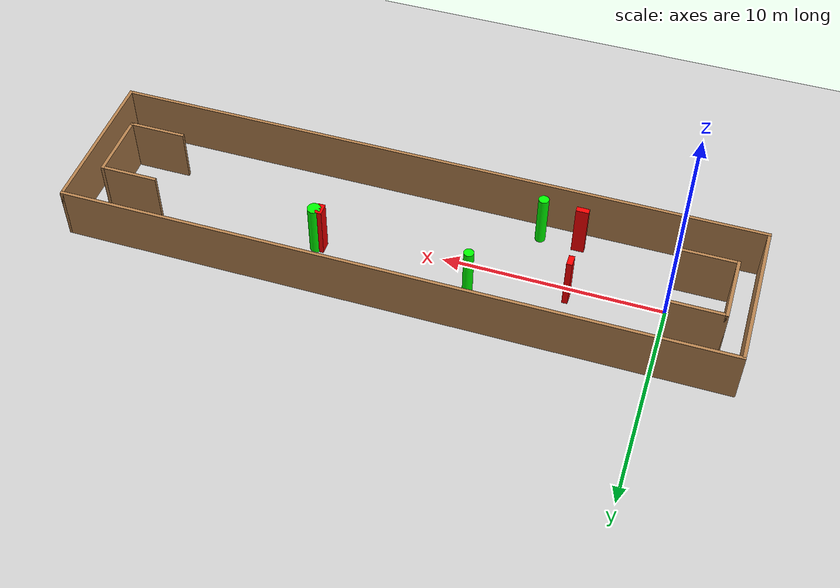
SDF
<sdf version="1.7">
 <world name="default">
  <light name="sun" type="directional">
   <pose>0 0 10 0 -0 0</pose>
   <diffuse>0.8 0.8 0.8 1</diffuse>
   <specular>0.2 0.2 0.2 1</specular>
   <attenuation>
    <range>1000</range>
    <constant>0.9</constant>
    <linear>0.01</linear>
    <quadratic>0.001</quadratic>
   </attenuation>
   <direction>-0.5 0.1 -0.9</direction>
   <spot><inner_angle>0</inner_angle><outer_angle>0</outer_angle><falloff>0</falloff></spot>
  </light>
  <model name="ground_plane">
   <static>1</static>
   <link name="link">
    <collision name="collision">
     <geometry><plane><normal>0 0 1</normal><size>100 100</size></plane></geometry>
     <surface>
      <contact><collide_bitmask>65535</collide_bitmask></contact>
      <friction><ode><mu>100</mu><mu2>50</mu2></ode></friction>
     </surface>
    </collision>
    <visual name="visual">
     <cast_shadows>0</cast_shadows>
     <geometry><plane><normal>0 0 1</normal><size>100 100</size></plane></geometry>
     <material>
      <script><uri>file://media/materials/scripts/gazebo.material</uri><name>Gazebo/Grey</name></script>
     </material>
    </visual>
   </link>
  </model>
  <gravity>0 0 -9.8</gravity>
  <magnetic_field>6e-06 2.3e-05 -4.2e-05</magnetic_field>
  <atmosphere type="adiabatic"/>
  <physics type="ode">
   <max_step_size>0.001</max_step_size>
   <real_time_factor>1</real_time_factor>
   <real_time_update_rate>1000</real_time_update_rate>
  </physics>
  <scene><ambient>0.4 0.4 0.4 1</ambient><background>0.7 0.7 0.7 1</background><shadows>1</shadows></scene>
  <spherical_coordinates>
   <surface_model>EARTH_WGS84</surface_model>
   <latitude_deg>0</latitude_deg>
   <longitude_deg>0</longitude_deg>
   <elevation>0</elevation>
   <heading_deg>0</heading_deg>
  </spherical_coordinates>
  <model name="my_base_walls">
   <link name="Wall_0">
    <collision name="Wall_0_Collision">
     <geometry><box><size>7.15 0.15 2.5</size></box></geometry>
     <pose>0 0 1.25 0 -0 0</pose>
    </collision>
    <visual name="Wall_0_Visual">
     <pose>0 0 1.25 0 -0 0</pose>
     <geometry><box><size>7.15 0.15 2.5</size></box></geometry>
     <material>
      <script><uri>file://media/materials/scripts/gazebo.material</uri><name>Gazebo/Wood</name></script>
      <ambient>1 1 1 1</ambient>
     </material>
     <meta><layer>0</layer></meta>
    </visual>
    <pose>-15 0 0 0 -0 1.5708</pose>
   </link>
   <link name="Wall_10">
    <collision name="Wall_10_Collision">
     <geometry><box><size>2.65 0.15 2.5</size></box></geometry>
     <pose>0 0 1.25 0 -0 0</pose>
    </collision>
    <visual name="Wall_10_Visual">
     <pose>0 0 1.25 0 -0 0</pose>
     <geometry><box><size>2.65 0.15 2.5</size></box></geometry>
     <material>
      <script><uri>file://media/materials/scripts/gazebo.material</uri><name>Gazebo/Wood</name></script>
      <ambient>1 1 1 1</ambient>
     </material>
     <meta><layer>0</layer></meta>
    </visual>
    <pose>-12.75 -1.5 0 0 -0 0</pose>
   </link>
   <link name="Wall_12">
    <collision name="Wall_12_Collision">
     <geometry><box><size>2.65 0.15 2.5</size></box></geometry>
     <pose>0 0 1.25 0 -0 0</pose>
    </collision>
    <visual name="Wall_12_Visual">
     <pose>0 0 1.25 0 -0 0</pose>
     <geometry><box><size>2.65 0.15 2.5</size></box></geometry>
     <material>
      <script><uri>file://media/materials/scripts/gazebo.material</uri><name>Gazebo/Wood</name></script>
      <ambient>1 1 1 1</ambient>
     </material>
     <meta><layer>0</layer></meta>
    </visual>
    <pose>-12.75 1.5 0 0 -0 0</pose>
   </link>
   <link name="Wall_14">
    <collision name="Wall_14_Collision">
     <geometry><box><size>3.15 0.15 2.5</size></box></geometry>
     <pose>0 0 1.25 0 -0 0</pose>
    </collision>
    <visual name="Wall_14_Visual">
     <pose>0 0 1.25 0 -0 0</pose>
     <geometry><box><size>3.15 0.15 2.5</size></box></geometry>
     <material>
      <script><uri>file://media/materials/scripts/gazebo.material</uri><name>Gazebo/Wood</name></script>
      <ambient>1 1 1 1</ambient>
     </material>
     <meta><layer>0</layer></meta>
    </visual>
    <pose>14 0 0 0 -0 -1.5708</pose>
   </link>
   <link name="Wall_15">
    <collision name="Wall_15_Collision">
     <geometry><box><size>2.65 0.15 2.5</size></box></geometry>
     <pose>0 0 1.25 0 -0 0</pose>
    </collision>
    <visual name="Wall_15_Visual">
     <pose>0 0 1.25 0 -0 0</pose>
     <geometry><box><size>2.65 0.15 2.5</size></box></geometry>
     <material>
      <script><uri>file://media/materials/scripts/gazebo.material</uri><name>Gazebo/Wood</name></script>
      <ambient>1 1 1 1</ambient>
     </material>
     <meta><layer>0</layer></meta>
    </visual>
    <pose>12.75 -1.5 0 0 -0 3.14159</pose>
   </link>
   <link name="Wall_17">
    <collision name="Wall_17_Collision">
     <geometry><box><size>2.65 0.15 2.5</size></box></geometry>
     <pose>0 0 1.25 0 -0 0</pose>
    </collision>
    <visual name="Wall_17_Visual">
     <pose>0 0 1.25 0 -0 0</pose>
     <geometry><box><size>2.65 0.15 2.5</size></box></geometry>
     <material>
      <script><uri>file://media/materials/scripts/gazebo.material</uri><name>Gazebo/Wood</name></script>
      <ambient>1 1 1 1</ambient>
     </material>
     <meta><layer>0</layer></meta>
    </visual>
    <pose>12.75 1.5 0 0 -0 3.14159</pose>
   </link>
   <link name="Wall_2">
    <collision name="Wall_2_Collision">
     <geometry><box><size>30.15 0.15 2.5</size></box></geometry>
     <pose>0 0 1.25 0 -0 0</pose>
    </collision>
    <visual name="Wall_2_Visual">
     <pose>0 0 1.25 0 -0 0</pose>
     <geometry><box><size>30.15 0.15 2.5</size></box></geometry>
     <material>
      <script><uri>file://media/materials/scripts/gazebo.material</uri><name>Gazebo/Wood</name></script>
      <ambient>1 1 1 1</ambient>
     </material>
     <meta><layer>0</layer></meta>
    </visual>
    <pose>-0 -3.5 0 0 -0 0</pose>
   </link>
   <link name="Wall_4">
    <collision name="Wall_4_Collision">
     <geometry><box><size>30.15 0.15 2.5</size></box></geometry>
     <pose>0 0 1.25 0 -0 0</pose>
    </collision>
    <visual name="Wall_4_Visual">
     <pose>0 0 1.25 0 -0 0</pose>
     <geometry><box><size>30.15 0.15 2.5</size></box></geometry>
     <material>
      <script><uri>file://media/materials/scripts/gazebo.material</uri><name>Gazebo/Wood</name></script>
      <ambient>1 1 1 1</ambient>
     </material>
     <meta><layer>0</layer></meta>
    </visual>
    <pose>-0 3.5 0 0 -0 0</pose>
   </link>
   <link name="Wall_6">
    <collision name="Wall_6_Collision">
     <geometry><box><size>7.15 0.15 2.5</size></box></geometry>
     <pose>0 0 1.25 0 -0 0</pose>
    </collision>
    <visual name="Wall_6_Visual">
     <pose>0 0 1.25 0 -0 0</pose>
     <geometry><box><size>7.15 0.15 2.5</size></box></geometry>
     <material>
      <script><uri>file://media/materials/scripts/gazebo.material</uri><name>Gazebo/Wood</name></script>
      <ambient>1 1 1 1</ambient>
     </material>
     <meta><layer>0</layer></meta>
    </visual>
    <pose>15 0 0 0 -0 -1.5708</pose>
   </link>
   <link name="Wall_9">
    <collision name="Wall_9_Collision">
     <geometry><box><size>3.15 0.15 2.5</size></box></geometry>
     <pose>0 0 1.25 0 -0 0</pose>
    </collision>
    <visual name="Wall_9_Visual">
     <pose>0 0 1.25 0 -0 0</pose>
     <geometry><box><size>3.15 0.15 2.5</size></box></geometry>
     <material>
      <script><uri>file://media/materials/scripts/gazebo.material</uri><name>Gazebo/Wood</name></script>
      <ambient>1 1 1 1</ambient>
     </material>
     <meta><layer>0</layer></meta>
    </visual>
    <pose>-14 0 0 0 -0 -1.5708</pose>
   </link>
   <static>1</static>
   <pose>11.5 0 0 0 -0 0</pose>
  </model>
  <model name="cylinder1">
   <static>1</static>
   <link name="link">
    <inertial>
     <mass>1</mass>
     <inertia><ixx>0.5</ixx><ixy>0</ixy><ixz>0</ixz><iyy>0.5</iyy><iyz>0</iyz><izz>1</izz></inertia>
    </inertial>
    <collision name="collision">
     <geometry><cylinder><radius>0.22720727942196672</radius><length>2.5</length></cylinder></geometry>
    </collision>
    <visual name="visual">
     <geometry><cylinder><radius>0.22720727942196672</radius><length>2.5</length></cylinder></geometry>
     <material>
      <ambient>0 1 0 1</ambient>
      <diffuse>0 1 0 1</diffuse>
      <specular>0.1 0.1 0.1 1</specular>
      <emissive>0 0 0 0</emissive>
     </material>
    </visual>
   </link>
   <pose>8.460772936741309 1.4446498533823533 1.25 0 0 0</pose>
  </model>
  <model name="cylinder2">
   <static>1</static>
   <link name="link">
    <inertial>
     <mass>1</mass>
     <inertia><ixx>0.5</ixx><ixy>0</ixy><ixz>0</ixz><iyy>0.5</iyy><iyz>0</iyz><izz>1</izz></inertia>
    </inertial>
    <collision name="collision">
     <geometry><cylinder><radius>0.3090887401085824</radius><length>2.5</length></cylinder></geometry>
    </collision>
    <visual name="visual">
     <geometry><cylinder><radius>0.3090887401085824</radius><length>2.5</length></cylinder></geometry>
     <material>
      <ambient>0 1 0 1</ambient>
      <diffuse>0 1 0 1</diffuse>
      <specular>0.1 0.1 0.1 1</specular>
      <emissive>0 0 0 0</emissive>
     </material>
    </visual>
   </link>
   <pose>15.607083938366152 1.0104167682816865 1.25 0 0 0</pose>
  </model>
  <model name="cylinder3">
   <static>1</static>
   <link name="link">
    <inertial>
     <mass>1</mass>
     <inertia><ixx>0.5</ixx><ixy>0</ixy><ixz>0</ixz><iyy>0.5</iyy><iyz>0</iyz><izz>1</izz></inertia>
    </inertial>
    <collision name="collision">
     <geometry><cylinder><radius>0.2369131995288724</radius><length>2.5</length></cylinder></geometry>
    </collision>
    <visual name="visual">
     <geometry><cylinder><radius>0.2369131995288724</radius><length>2.5</length></cylinder></geometry>
     <material>
      <ambient>0 1 0 1</ambient>
      <diffuse>0 1 0 1</diffuse>
      <specular>0.1 0.1 0.1 1</specular>
      <emissive>0 0 0 0</emissive>
     </material>
    </visual>
   </link>
   <pose>6.212013211465374 -2.584056944542808 1.25 0 0 0</pose>
  </model>
  <model name="box1">
   <static>1</static>
   <link name="link">
    <inertial>
     <mass>1</mass>
     <inertia><ixx>0.083</ixx><ixy>0</ixy><ixz>0</ixz><iyy>0.083</iyy><iyz>0</iyz><izz>0.083</izz></inertia>
    </inertial>
    <collision name="collision">
     <geometry><box><size>0.5751149738652186 0.258105046487295 2.5</size></box></geometry>
    </collision>
    <visual name="visual">
     <geometry><box><size>0.5751149738652186 0.258105046487295 2.5</size></box></geometry>
     <material>
      <ambient>1 0 0 1</ambient>
      <diffuse>1 0 0 1</diffuse>
      <specular>0.1 0.1 0.1 1</specular>
      <emissive>0 0 0 0</emissive>
     </material>
    </visual>
    <sensor name="my_contact" type="contact">
     <contact><collision>box_collision</collision><topic>__default_topic__</topic></contact>
    </sensor>
   </link>
   <pose>4.441013160063985 -2.4732096905143566 1.25 0 0 0</pose>
  </model>
  <model name="box2">
   <static>1</static>
   <link name="link">
    <inertial>
     <mass>1</mass>
     <inertia><ixx>0.083</ixx><ixy>0</ixy><ixz>0</ixz><iyy>0.083</iyy><iyz>0</iyz><izz>0.083</izz></inertia>
    </inertial>
    <collision name="collision">
     <geometry><box><size>0.34548578159743004 0.5633631305615051 2.5</size></box></geometry>
    </collision>
    <visual name="visual">
     <geometry><box><size>0.34548578159743004 0.5633631305615051 2.5</size></box></geometry>
     <material>
      <ambient>1 0 0 1</ambient>
      <diffuse>1 0 0 1</diffuse>
      <specular>0.1 0.1 0.1 1</specular>
      <emissive>0 0 0 0</emissive>
     </material>
    </visual>
    <sensor name="my_contact" type="contact">
     <contact><collision>box_collision</collision><topic>__default_topic__</topic></contact>
    </sensor>
   </link>
   <pose>15.37535022095253 0.9618882166528353 1.25 0 0 0</pose>
  </model>
  <model name="box3">
   <static>1</static>
   <link name="link">
    <inertial>
     <mass>1</mass>
     <inertia><ixx>0.083</ixx><ixy>0</ixy><ixz>0</ixz><iyy>0.083</iyy><iyz>0</iyz><izz>0.083</izz></inertia>
    </inertial>
    <collision name="collision">
     <geometry><box><size>0.25523175116812635 0.520625040151817 2.5</size></box></geometry>
    </collision>
    <visual name="visual">
     <geometry><box><size>0.25523175116812635 0.520625040151817 2.5</size></box></geometry>
     <material>
      <ambient>1 0 0 1</ambient>
      <diffuse>1 0 0 1</diffuse>
      <specular>0.1 0.1 0.1 1</specular>
      <emissive>0 0 0 0</emissive>
     </material>
    </visual>
    <sensor name="my_contact" type="contact">
     <contact><collision>box_collision</collision><topic>__default_topic__</topic></contact>
    </sensor>
   </link>
   <pose>4.2602844297221445 0.5489290533488873 1.25 0 0 0</pose>
  </model>
 </world>
</sdf>
